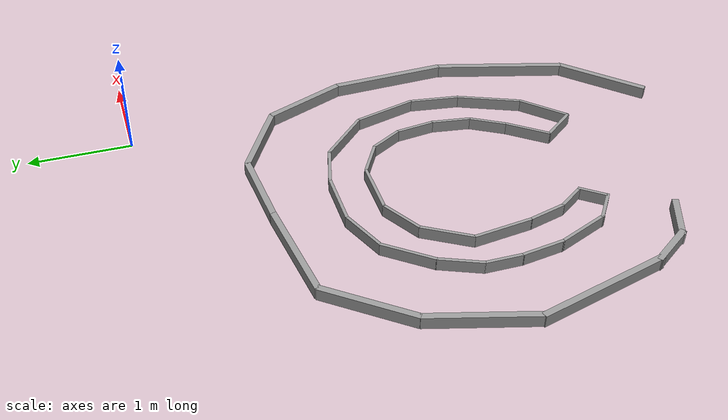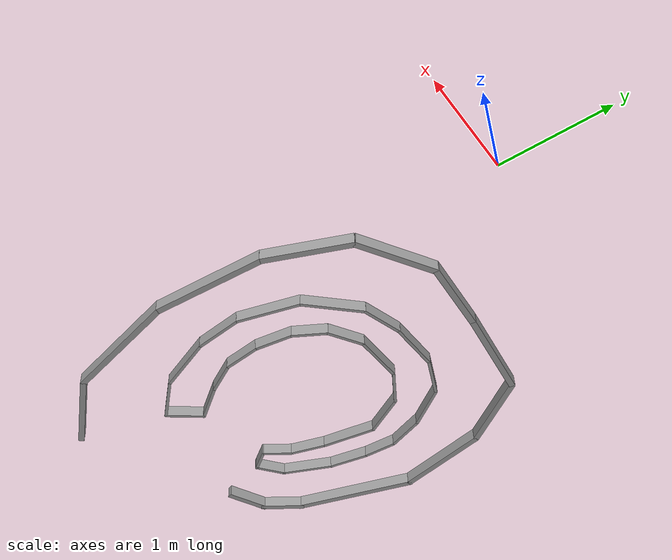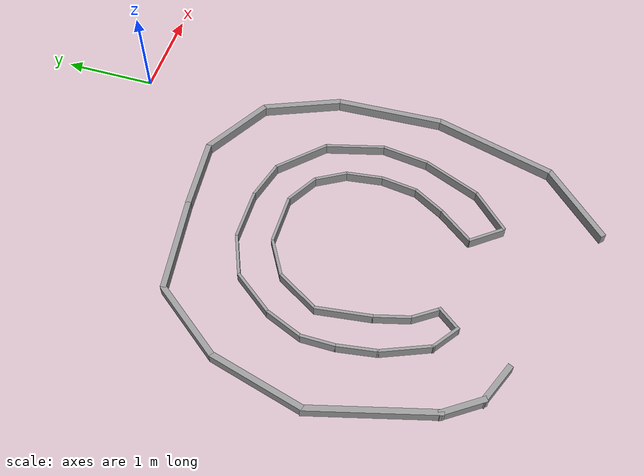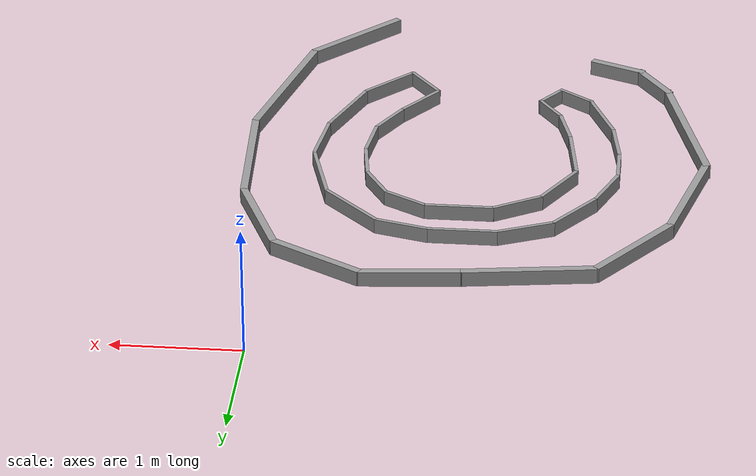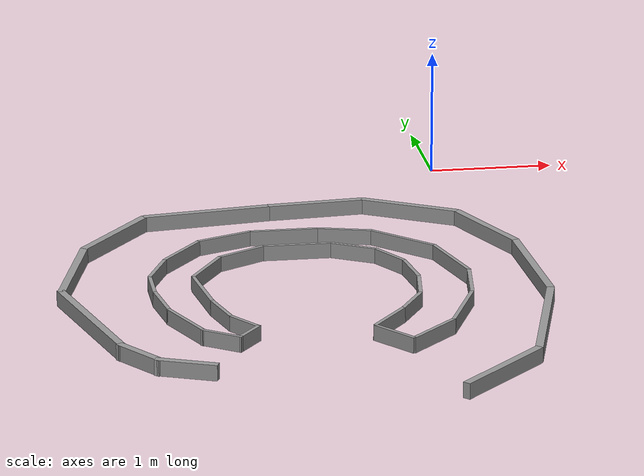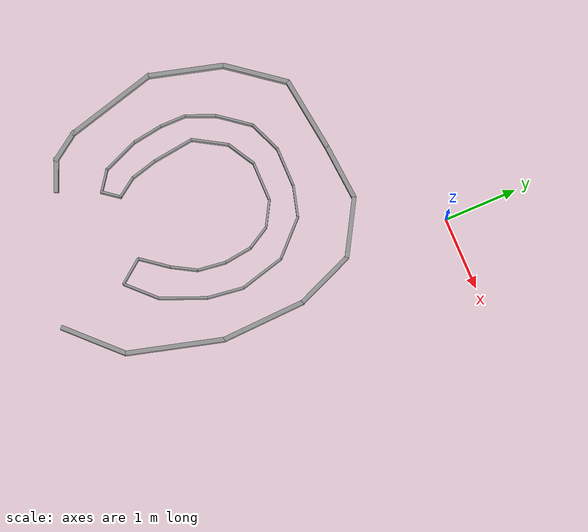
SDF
<?xml version='1.0'?>
<sdf version='1.4'>
  <model name='thymio_maze'>
    <link name='Wall_0'>
      <collision name='Wall_0_Collision'>
        <geometry>
          <box>
            <size>0.929348 0.06 0.12</size>
          </box>
        </geometry>
        <pose>0 0 0.06 0 -0 0</pose>
      </collision>
      <visual name='Wall_0_Visual'>
        <pose>0 0 0.06 0 -0 0</pose>
        <geometry>
          <box>
            <size>0.929348 0.06 0.12</size>
          </box>
        </geometry>
        <material>
          <script>
            <uri>file://media/materials/scripts/gazebo.material</uri>
            <name>Gazebo/Grey</name>
          </script>
        </material>
      </visual>
      <velocity_decay>
        <linear>0</linear>
        <angular>0</angular>
      </velocity_decay>
      <pose>-0.334962 -4.92496 0 0 -0 0.785398</pose>
    </link>
    <link name='Wall_1'>
      <collision name='Wall_1_Collision'>
        <geometry>
          <box>
            <size>1.32208 0.06 0.12</size>
          </box>
        </geometry>
        <pose>0 0 0.06 0 -0 0</pose>
      </collision>
      <visual name='Wall_1_Visual'>
        <pose>0 0 0.06 0 -0 0</pose>
        <geometry>
          <box>
            <size>1.32208 0.06 0.12</size>
          </box>
        </geometry>
        <material>
          <script>
            <uri>file://media/materials/scripts/gazebo.material</uri>
            <name>Gazebo/Grey</name>
          </script>
        </material>
      </visual>
      <velocity_decay>
        <linear>0</linear>
        <angular>0</angular>
      </velocity_decay>
      <pose>0.159873 -3.96624 0 0 -0 1.309</pose>
    </link>
    <link name='Wall_10'>
      <collision name='Wall_10_Collision'>
        <geometry>
          <box>
            <size>0.474957 0.06 0.12</size>
          </box>
        </geometry>
        <pose>0 0 0.06 0 -0 0</pose>
      </collision>
      <visual name='Wall_10_Visual'>
        <pose>0 0 0.06 0 -0 0</pose>
        <geometry>
          <box>
            <size>0.474957 0.06 0.12</size>
          </box>
        </geometry>
        <material>
          <script>
            <uri>file://media/materials/scripts/gazebo.material</uri>
            <name>Gazebo/Grey</name>
          </script>
        </material>
      </visual>
      <velocity_decay>
        <linear>0</linear>
        <angular>0</angular>
      </velocity_decay>
      <pose>-2.8775 -4.281 0 0 0 -0.968757</pose>
    </link>
    <link name='Wall_11'>
      <collision name='Wall_11_Collision'>
        <geometry>
          <box>
            <size>0.471539 0.06 0.12</size>
          </box>
        </geometry>
        <pose>0 0 0.06 0 -0 0</pose>
      </collision>
      <visual name='Wall_11_Visual'>
        <pose>0 0 0.06 0 -0 0</pose>
        <geometry>
          <box>
            <size>0.471539 0.06 0.12</size>
          </box>
        </geometry>
        <material>
          <script>
            <uri>file://media/materials/scripts/gazebo.material</uri>
            <name>Gazebo/Grey</name>
          </script>
        </material>
      </visual>
      <velocity_decay>
        <linear>0</linear>
        <angular>0</angular>
      </velocity_decay>
      <pose>-2.57 -4.531 0 0 0 -0.394043</pose>
    </link>
    <link name='Wall_13'>
      <collision name='Wall_13_Collision'>
        <geometry>
          <box>
            <size>0.516728 0.03 0.12</size>
          </box>
        </geometry>
        <pose>0 0 0.06 0 -0 0</pose>
      </collision>
      <visual name='Wall_13_Visual'>
        <pose>0 0 0.06 0 -0 0</pose>
        <geometry>
          <box>
            <size>0.516728 0.03 0.12</size>
          </box>
        </geometry>
        <material>
          <script>
            <uri>file://media/materials/scripts/gazebo.material</uri>
            <name>Gazebo/Grey</name>
          </script>
        </material>
      </visual>
      <velocity_decay>
        <linear>0</linear>
        <angular>0</angular>
      </velocity_decay>
      <pose>-0.692326 -4.09308 0 0 -0 0.785398</pose>
    </link>
    <link name='Wall_14'>
      <collision name='Wall_14_Collision'>
        <geometry>
          <box>
            <size>0.649087 0.03 0.12</size>
          </box>
        </geometry>
        <pose>0 0 0.06 0 -0 0</pose>
      </collision>
      <visual name='Wall_14_Visual'>
        <pose>0 0 0.06 0 -0 0</pose>
        <geometry>
          <box>
            <size>0.649087 0.03 0.12</size>
          </box>
        </geometry>
        <material>
          <script>
            <uri>file://media/materials/scripts/gazebo.material</uri>
            <name>Gazebo/Grey</name>
          </script>
        </material>
      </visual>
      <velocity_decay>
        <linear>0</linear>
        <angular>0</angular>
      </velocity_decay>
      <pose>-0.3908 -3.6185 0 0 -0 1.1781</pose>
    </link>
    <link name='Wall_15'>
      <collision name='Wall_15_Collision'>
        <geometry>
          <box>
            <size>0.503241 0.03 0.12</size>
          </box>
        </geometry>
        <pose>0 0 0.06 0 -0 0</pose>
      </collision>
      <visual name='Wall_15_Visual'>
        <pose>0 0 0.06 0 -0 0</pose>
        <geometry>
          <box>
            <size>0.503241 0.03 0.12</size>
          </box>
        </geometry>
        <material>
          <script>
            <uri>file://media/materials/scripts/gazebo.material</uri>
            <name>Gazebo/Grey</name>
          </script>
        </material>
      </visual>
      <velocity_decay>
        <linear>0</linear>
        <angular>0</angular>
      </velocity_decay>
      <pose>-0.236177 -3.07809 0 0 -0 1.4399</pose>
    </link>
    <link name='Wall_16'>
      <collision name='Wall_16_Collision'>
        <geometry>
          <box>
            <size>0.638103 0.03 0.12</size>
          </box>
        </geometry>
        <pose>0 0 0.06 0 -0 0</pose>
      </collision>
      <visual name='Wall_16_Visual'>
        <pose>0 0 0.06 0 -0 0</pose>
        <geometry>
          <box>
            <size>0.638103 0.03 0.12</size>
          </box>
        </geometry>
        <material>
          <script>
            <uri>file://media/materials/scripts/gazebo.material</uri>
            <name>Gazebo/Grey</name>
          </script>
        </material>
      </visual>
      <velocity_decay>
        <linear>0</linear>
        <angular>0</angular>
      </velocity_decay>
      <pose>-0.285208 -2.52977 0 0 -0 1.8326</pose>
    </link>
    <link name='Wall_17'>
      <collision name='Wall_17_Collision'>
        <geometry>
          <box>
            <size>0.612373 0.03 0.12</size>
          </box>
        </geometry>
        <pose>0 0 0.06 0 -0 0</pose>
      </collision>
      <visual name='Wall_17_Visual'>
        <pose>0 0 0.06 0 -0 0</pose>
        <geometry>
          <box>
            <size>0.612373 0.03 0.12</size>
          </box>
        </geometry>
        <material>
          <script>
            <uri>file://media/materials/scripts/gazebo.material</uri>
            <name>Gazebo/Grey</name>
          </script>
        </material>
      </visual>
      <velocity_decay>
        <linear>0</linear>
        <angular>0</angular>
      </velocity_decay>
      <pose>-0.579462 -2.01345 0 0 -0 2.35619</pose>
    </link>
    <link name='Wall_18'>
      <collision name='Wall_18_Collision'>
        <geometry>
          <box>
            <size>0.433062 0.03 0.12</size>
          </box>
        </geometry>
        <pose>0 0 0.06 0 -0 0</pose>
      </collision>
      <visual name='Wall_18_Visual'>
        <pose>0 0 0.06 0 -0 0</pose>
        <geometry>
          <box>
            <size>0.433062 0.03 0.12</size>
          </box>
        </geometry>
        <material>
          <script>
            <uri>file://media/materials/scripts/gazebo.material</uri>
            <name>Gazebo/Grey</name>
          </script>
        </material>
      </visual>
      <velocity_decay>
        <linear>0</linear>
        <angular>0</angular>
      </velocity_decay>
      <pose>-0.996756 -1.74573 0 0 -0 2.87979</pose>
    </link>
    <link name='Wall_19'>
      <collision name='Wall_19_Collision'>
        <geometry>
          <box>
            <size>0.548723 0.03 0.12</size>
          </box>
        </geometry>
        <pose>0 0 0.06 0 -0 0</pose>
      </collision>
      <visual name='Wall_19_Visual'>
        <pose>0 0 0.06 0 -0 0</pose>
        <geometry>
          <box>
            <size>0.548723 0.03 0.12</size>
          </box>
        </geometry>
        <material>
          <script>
            <uri>file://media/materials/scripts/gazebo.material</uri>
            <name>Gazebo/Grey</name>
          </script>
        </material>
      </visual>
      <velocity_decay>
        <linear>0</linear>
        <angular>0</angular>
      </velocity_decay>
      <pose>-1.47044 -1.69098 0 0 -0 3.14159</pose>
    </link>
    <link name='Wall_2'>
      <collision name='Wall_2_Collision'>
        <geometry>
          <box>
            <size>1.15363 0.06 0.12</size>
          </box>
        </geometry>
        <pose>0 0 0.06 0 -0 0</pose>
      </collision>
      <visual name='Wall_2_Visual'>
        <pose>0 0 0.06 0 -0 0</pose>
        <geometry>
          <box>
            <size>1.15363 0.06 0.12</size>
          </box>
        </geometry>
        <material>
          <script>
            <uri>file://media/materials/scripts/gazebo.material</uri>
            <name>Gazebo/Grey</name>
          </script>
        </material>
      </visual>
      <velocity_decay>
        <linear>0</linear>
        <angular>0</angular>
      </velocity_decay>
      <pose>0.304834 -2.76128 0 0 -0 1.61424</pose>
    </link>
    <link name='Wall_20'>
      <collision name='Wall_20_Collision'>
        <geometry>
          <box>
            <size>0.469074 0.03 0.12</size>
          </box>
        </geometry>
        <pose>0 0 0.06 0 -0 0</pose>
      </collision>
      <visual name='Wall_20_Visual'>
        <pose>0 0 0.06 0 -0 0</pose>
        <geometry>
          <box>
            <size>0.469074 0.03 0.12</size>
          </box>
        </geometry>
        <material>
          <script>
            <uri>file://media/materials/scripts/gazebo.material</uri>
            <name>Gazebo/Grey</name>
          </script>
        </material>
      </visual>
      <velocity_decay>
        <linear>0</linear>
        <angular>0</angular>
      </velocity_decay>
      <pose>-1.95187 -1.77882 0 0 0 -2.74889</pose>
    </link>
    <link name='Wall_21'>
      <collision name='Wall_21_Collision'>
        <geometry>
          <box>
            <size>0.517641 0.03 0.12</size>
          </box>
        </geometry>
        <pose>0 0 0.06 0 -0 0</pose>
      </collision>
      <visual name='Wall_21_Visual'>
        <pose>0 0 0.06 0 -0 0</pose>
        <geometry>
          <box>
            <size>0.517641 0.03 0.12</size>
          </box>
        </geometry>
        <material>
          <script>
            <uri>file://media/materials/scripts/gazebo.material</uri>
            <name>Gazebo/Grey</name>
          </script>
        </material>
      </visual>
      <velocity_decay>
        <linear>0</linear>
        <angular>0</angular>
      </velocity_decay>
      <pose>-2.31845 -2.06803 0 0 0 -2.2253</pose>
    </link>
    <link name='Wall_22'>
      <collision name='Wall_22_Collision'>
        <geometry>
          <box>
            <size>0.422992 0.03 0.12</size>
          </box>
        </geometry>
        <pose>0 0 0.06 0 -0 0</pose>
      </collision>
      <visual name='Wall_22_Visual'>
        <pose>0 0 0.06 0 -0 0</pose>
        <geometry>
          <box>
            <size>0.422992 0.03 0.12</size>
          </box>
        </geometry>
        <material>
          <script>
            <uri>file://media/materials/scripts/gazebo.material</uri>
            <name>Gazebo/Grey</name>
          </script>
        </material>
      </visual>
      <velocity_decay>
        <linear>0</linear>
        <angular>0</angular>
      </velocity_decay>
      <pose>-2.55199 -2.46018 0 0 0 -1.96349</pose>
    </link>
    <link name='Wall_23'>
      <collision name='Wall_23_Collision'>
        <geometry>
          <box>
            <size>0.358741 0.03 0.12</size>
          </box>
        </geometry>
        <pose>0 0 0.06 0 -0 0</pose>
      </collision>
      <visual name='Wall_23_Visual'>
        <pose>0 0 0.06 0 -0 0</pose>
        <geometry>
          <box>
            <size>0.358741 0.03 0.12</size>
          </box>
        </geometry>
        <material>
          <script>
            <uri>file://media/materials/scripts/gazebo.material</uri>
            <name>Gazebo/Grey</name>
          </script>
        </material>
      </visual>
      <velocity_decay>
        <linear>0</linear>
        <angular>0</angular>
      </velocity_decay>
      <pose>-2.63101 -2.82532 0 0 0 -1.5708</pose>
    </link>
    <link name='Wall_24'>
      <collision name='Wall_24_Collision'>
        <geometry>
          <box>
            <size>0.420746 0.03 0.12</size>
          </box>
        </geometry>
        <pose>0 0 0.06 0 -0 0</pose>
      </collision>
      <visual name='Wall_24_Visual'>
        <pose>0 0 0.06 0 -0 0</pose>
        <geometry>
          <box>
            <size>0.420746 0.03 0.12</size>
          </box>
        </geometry>
        <material>
          <script>
            <uri>file://media/materials/scripts/gazebo.material</uri>
            <name>Gazebo/Grey</name>
          </script>
        </material>
      </visual>
      <velocity_decay>
        <linear>0</linear>
        <angular>0</angular>
      </velocity_decay>
      <pose>-2.59991 -3.2027 0 0 0 -1.41876</pose>
    </link>
    <link name='Wall_25'>
      <collision name='Wall_25_Collision'>
        <geometry>
          <box>
            <size>0.549817 0.03 0.12</size>
          </box>
        </geometry>
        <pose>0 0 0.06 0 -0 0</pose>
      </collision>
      <visual name='Wall_25_Visual'>
        <pose>0 0 0.06 0 -0 0</pose>
        <geometry>
          <box>
            <size>0.549817 0.03 0.12</size>
          </box>
        </geometry>
        <material>
          <script>
            <uri>file://media/materials/scripts/gazebo.material</uri>
            <name>Gazebo/Grey</name>
          </script>
        </material>
      </visual>
      <velocity_decay>
        <linear>0</linear>
        <angular>0</angular>
      </velocity_decay>
      <pose>-2.4694 -3.64585 0 0 0 -1.17836</pose>
    </link>
    <link name='Wall_26'>
      <collision name='Wall_26_Collision'>
        <geometry>
          <box>
            <size>0.338089 0.03 0.12</size>
          </box>
        </geometry>
        <pose>0 0 0.06 0 -0 0</pose>
      </collision>
      <visual name='Wall_26_Visual'>
        <pose>0 0 0.06 0 -0 0</pose>
        <geometry>
          <box>
            <size>0.338089 0.03 0.12</size>
          </box>
        </geometry>
        <material>
          <script>
            <uri>file://media/materials/scripts/gazebo.material</uri>
            <name>Gazebo/Grey</name>
          </script>
        </material>
      </visual>
      <velocity_decay>
        <linear>0</linear>
        <angular>0</angular>
      </velocity_decay>
      <pose>-2.24549 -3.976 0 0 0 -0.625889</pose>
    </link>
    <link name='Wall_27'>
      <collision name='Wall_27_Collision'>
        <geometry>
          <box>
            <size>0.290628 0.03 0.12</size>
          </box>
        </geometry>
        <pose>0 0 0.06 0 -0 0</pose>
      </collision>
      <visual name='Wall_27_Visual'>
        <pose>0 0 0.06 0 -0 0</pose>
        <geometry>
          <box>
            <size>0.290628 0.03 0.12</size>
          </box>
        </geometry>
        <material>
          <script>
            <uri>file://media/materials/scripts/gazebo.material</uri>
            <name>Gazebo/Grey</name>
          </script>
        </material>
      </visual>
      <velocity_decay>
        <linear>0</linear>
        <angular>0</angular>
      </velocity_decay>
      <pose>-2.04165 -3.96261 0 0 -0 0.916298</pose>
    </link>
    <link name='Wall_28'>
      <collision name='Wall_28_Collision'>
        <geometry>
          <box>
            <size>0.309051 0.03 0.12</size>
          </box>
        </geometry>
        <pose>0 0 0.06 0 -0 0</pose>
      </collision>
      <visual name='Wall_28_Visual'>
        <pose>0 0 0.06 0 -0 0</pose>
        <geometry>
          <box>
            <size>0.309051 0.03 0.12</size>
          </box>
        </geometry>
        <material>
          <script>
            <uri>file://media/materials/scripts/gazebo.material</uri>
            <name>Gazebo/Grey</name>
          </script>
        </material>
      </visual>
      <velocity_decay>
        <linear>0</linear>
        <angular>0</angular>
      </velocity_decay>
      <pose>-2.04754 -3.73636 0 0 -0 2.17722</pose>
    </link>
    <link name='Wall_29'>
      <collision name='Wall_29_Collision'>
        <geometry>
          <box>
            <size>0.38166 0.03 0.12</size>
          </box>
        </geometry>
        <pose>0 0 0.06 0 -0 0</pose>
      </collision>
      <visual name='Wall_29_Visual'>
        <pose>0 0 0.06 0 -0 0</pose>
        <geometry>
          <box>
            <size>0.38166 0.03 0.12</size>
          </box>
        </geometry>
        <material>
          <script>
            <uri>file://media/materials/scripts/gazebo.material</uri>
            <name>Gazebo/Grey</name>
          </script>
        </material>
      </visual>
      <velocity_decay>
        <linear>0</linear>
        <angular>0</angular>
      </velocity_decay>
      <pose>-2.18086 -3.434 0 0 -0 1.8326</pose>
    </link>
    <link name='Wall_3'>
      <collision name='Wall_3_Collision'>
        <geometry>
          <box>
            <size>0.850952 0.06 0.12</size>
          </box>
        </geometry>
        <pose>0 0 0.06 0 -0 0</pose>
      </collision>
      <visual name='Wall_3_Visual'>
        <pose>0 0 0.06 0 -0 0</pose>
        <geometry>
          <box>
            <size>0.850952 0.06 0.12</size>
          </box>
        </geometry>
        <material>
          <script>
            <uri>file://media/materials/scripts/gazebo.material</uri>
            <name>Gazebo/Grey</name>
          </script>
        </material>
      </visual>
      <velocity_decay>
        <linear>0</linear>
        <angular>0</angular>
      </velocity_decay>
      <pose>0.119091 -1.80153 0 0 -0 1.96349</pose>
    </link>
    <link name='Wall_30'>
      <collision name='Wall_30_Collision'>
        <geometry>
          <box>
            <size>0.576041 0.03 0.12</size>
          </box>
        </geometry>
        <pose>0 0 0.06 0 -0 0</pose>
      </collision>
      <visual name='Wall_30_Visual'>
        <pose>0 0 0.06 0 -0 0</pose>
        <geometry>
          <box>
            <size>0.576041 0.03 0.12</size>
          </box>
        </geometry>
        <material>
          <script>
            <uri>file://media/materials/scripts/gazebo.material</uri>
            <name>Gazebo/Grey</name>
          </script>
        </material>
      </visual>
      <velocity_decay>
        <linear>0</linear>
        <angular>0</angular>
      </velocity_decay>
      <pose>-2.2659 -2.9739 0 0 -0 1.7017</pose>
    </link>
    <link name='Wall_31'>
      <collision name='Wall_31_Collision'>
        <geometry>
          <box>
            <size>0.505487 0.03 0.12</size>
          </box>
        </geometry>
        <pose>0 0 0.06 0 -0 0</pose>
      </collision>
      <visual name='Wall_31_Visual'>
        <pose>0 0 0.06 0 -0 0</pose>
        <geometry>
          <box>
            <size>0.505487 0.03 0.12</size>
          </box>
        </geometry>
        <material>
          <script>
            <uri>file://media/materials/scripts/gazebo.material</uri>
            <name>Gazebo/Grey</name>
          </script>
        </material>
      </visual>
      <velocity_decay>
        <linear>0</linear>
        <angular>0</angular>
      </velocity_decay>
      <pose>-2.17595 -2.48053 0 0 -0 1.03306</pose>
    </link>
    <link name='Wall_32'>
      <collision name='Wall_32_Collision'>
        <geometry>
          <box>
            <size>0.430244 0.03 0.12</size>
          </box>
        </geometry>
        <pose>0 0 0.06 0 -0 0</pose>
      </collision>
      <visual name='Wall_32_Visual'>
        <pose>0 0 0.06 0 -0 0</pose>
        <geometry>
          <box>
            <size>0.430244 0.03 0.12</size>
          </box>
        </geometry>
        <material>
          <script>
            <uri>file://media/materials/scripts/gazebo.material</uri>
            <name>Gazebo/Grey</name>
          </script>
        </material>
      </visual>
      <velocity_decay>
        <linear>0</linear>
        <angular>0</angular>
      </velocity_decay>
      <pose>-1.86708 -2.16269 0 0 -0 0.523599</pose>
    </link>
    <link name='Wall_33'>
      <collision name='Wall_33_Collision'>
        <geometry>
          <box>
            <size>0.543363 0.03 0.12</size>
          </box>
        </geometry>
        <pose>0 0 0.06 0 -0 0</pose>
      </collision>
      <visual name='Wall_33_Visual'>
        <pose>0 0 0.06 0 -0 0</pose>
        <geometry>
          <box>
            <size>0.543363 0.03 0.12</size>
          </box>
        </geometry>
        <material>
          <script>
            <uri>file://media/materials/scripts/gazebo.material</uri>
            <name>Gazebo/Grey</name>
          </script>
        </material>
      </visual>
      <velocity_decay>
        <linear>0</linear>
        <angular>0</angular>
      </velocity_decay>
      <pose>-1.41843 -2.05762 0 0 -0 0</pose>
    </link>
    <link name='Wall_34'>
      <collision name='Wall_34_Collision'>
        <geometry>
          <box>
            <size>0.382081 0.03 0.12</size>
          </box>
        </geometry>
        <pose>0 0 0.06 0 -0 0</pose>
      </collision>
      <visual name='Wall_34_Visual'>
        <pose>0 0 0.06 0 -0 0</pose>
        <geometry>
          <box>
            <size>0.382081 0.03 0.12</size>
          </box>
        </geometry>
        <material>
          <script>
            <uri>file://media/materials/scripts/gazebo.material</uri>
            <name>Gazebo/Grey</name>
          </script>
        </material>
      </visual>
      <velocity_decay>
        <linear>0</linear>
        <angular>0</angular>
      </velocity_decay>
      <pose>-0.990633 -2.15064 0 0 0 -0.523599</pose>
    </link>
    <link name='Wall_35'>
      <collision name='Wall_35_Collision'>
        <geometry>
          <box>
            <size>0.353313 0.03 0.12</size>
          </box>
        </geometry>
        <pose>0 0 0.06 0 -0 0</pose>
      </collision>
      <visual name='Wall_35_Visual'>
        <pose>0 0 0.06 0 -0 0</pose>
        <geometry>
          <box>
            <size>0.353313 0.03 0.12</size>
          </box>
        </geometry>
        <material>
          <script>
            <uri>file://media/materials/scripts/gazebo.material</uri>
            <name>Gazebo/Grey</name>
          </script>
        </material>
      </visual>
      <velocity_decay>
        <linear>0</linear>
        <angular>0</angular>
      </velocity_decay>
      <pose>-0.743689 -2.39232 0 0 0 -1.0472</pose>
    </link>
    <link name='Wall_36'>
      <collision name='Wall_36_Collision'>
        <geometry>
          <box>
            <size>0.392803 0.03 0.12</size>
          </box>
        </geometry>
        <pose>0 0 0.06 0 -0 0</pose>
      </collision>
      <visual name='Wall_36_Visual'>
        <pose>0 0 0.06 0 -0 0</pose>
        <geometry>
          <box>
            <size>0.392803 0.03 0.12</size>
          </box>
        </geometry>
        <material>
          <script>
            <uri>file://media/materials/scripts/gazebo.material</uri>
            <name>Gazebo/Grey</name>
          </script>
        </material>
      </visual>
      <velocity_decay>
        <linear>0</linear>
        <angular>0</angular>
      </velocity_decay>
      <pose>-0.632878 -2.73075 0 0 0 -1.4399</pose>
    </link>
    <link name='Wall_37'>
      <collision name='Wall_37_Collision'>
        <geometry>
          <box>
            <size>0.391377 0.03 0.12</size>
          </box>
        </geometry>
        <pose>0 0 0.06 0 -0 0</pose>
      </collision>
      <visual name='Wall_37_Visual'>
        <pose>0 0 0.06 0 -0 0</pose>
        <geometry>
          <box>
            <size>0.391377 0.03 0.12</size>
          </box>
        </geometry>
        <material>
          <script>
            <uri>file://media/materials/scripts/gazebo.material</uri>
            <name>Gazebo/Grey</name>
          </script>
        </material>
      </visual>
      <velocity_decay>
        <linear>0</linear>
        <angular>0</angular>
      </velocity_decay>
      <pose>-0.632785 -3.10957 0 0 0 -1.7017</pose>
    </link>
    <link name='Wall_38'>
      <collision name='Wall_38_Collision'>
        <geometry>
          <box>
            <size>0.376115 0.03 0.12</size>
          </box>
        </geometry>
        <pose>0 0 0.06 0 -0 0</pose>
      </collision>
      <visual name='Wall_38_Visual'>
        <pose>0 0 0.06 0 -0 0</pose>
        <geometry>
          <box>
            <size>0.376115 0.03 0.12</size>
          </box>
        </geometry>
        <material>
          <script>
            <uri>file://media/materials/scripts/gazebo.material</uri>
            <name>Gazebo/Grey</name>
          </script>
        </material>
      </visual>
      <velocity_decay>
        <linear>0</linear>
        <angular>0</angular>
      </velocity_decay>
      <pose>-0.749203 -3.45716 0 0 0 -2.0944</pose>
    </link>
    <link name='Wall_39'>
      <collision name='Wall_39_Collision'>
        <geometry>
          <box>
            <size>0.449036 0.03 0.12</size>
          </box>
        </geometry>
        <pose>0 0 0.06 0 -0 0</pose>
      </collision>
      <visual name='Wall_39_Visual'>
        <pose>0 0 0.06 0 -0 0</pose>
        <geometry>
          <box>
            <size>0.449036 0.03 0.12</size>
          </box>
        </geometry>
        <material>
          <script>
            <uri>file://media/materials/scripts/gazebo.material</uri>
            <name>Gazebo/Grey</name>
          </script>
        </material>
      </visual>
      <velocity_decay>
        <linear>0</linear>
        <angular>0</angular>
      </velocity_decay>
      <pose>-0.974366 -3.78985 0 0 0 -2.2253</pose>
    </link>
    <link name='Wall_4'>
      <collision name='Wall_4_Collision'>
        <geometry>
          <box>
            <size>0.814735 0.06 0.12</size>
          </box>
        </geometry>
        <pose>0 0 0.06 0 -0 0</pose>
      </collision>
      <visual name='Wall_4_Visual'>
        <pose>0 0 0.06 0 -0 0</pose>
        <geometry>
          <box>
            <size>0.814735 0.06 0.12</size>
          </box>
        </geometry>
        <material>
          <script>
            <uri>file://media/materials/scripts/gazebo.material</uri>
            <name>Gazebo/Grey</name>
          </script>
        </material>
      </visual>
      <velocity_decay>
        <linear>0</linear>
        <angular>0</angular>
      </velocity_decay>
      <pose>-0.390279 -1.21188 0 0 -0 2.61799</pose>
    </link>
    <link name='Wall_40'>
      <collision name='Wall_40_Collision'>
        <geometry>
          <box>
            <size>0.398524 0.03 0.12</size>
          </box>
        </geometry>
        <pose>0 0 0.06 0 -0 0</pose>
      </collision>
      <visual name='Wall_40_Visual'>
        <pose>0 0 0.06 0 -0 0</pose>
        <geometry>
          <box>
            <size>0.398524 0.03 0.12</size>
          </box>
        </geometry>
        <material>
          <script>
            <uri>file://media/materials/scripts/gazebo.material</uri>
            <name>Gazebo/Grey</name>
          </script>
        </material>
      </visual>
      <velocity_decay>
        <linear>0</linear>
        <angular>0</angular>
      </velocity_decay>
      <pose>-0.989741 -4.11812 0 0 0 -0.916298</pose>
    </link>
    <link name='Wall_5'>
      <collision name='Wall_5_Collision'>
        <geometry>
          <box>
            <size>0.779264 0.06 0.12</size>
          </box>
        </geometry>
        <pose>0 0 0.06 0 -0 0</pose>
      </collision>
      <visual name='Wall_5_Visual'>
        <pose>0 0 0.06 0 -0 0</pose>
        <geometry>
          <box>
            <size>0.779264 0.06 0.12</size>
          </box>
        </geometry>
        <material>
          <script>
            <uri>file://media/materials/scripts/gazebo.material</uri>
            <name>Gazebo/Grey</name>
          </script>
        </material>
      </visual>
      <velocity_decay>
        <linear>0</linear>
        <angular>0</angular>
      </velocity_decay>
      <pose>-1.12207 -1.04224 0 0 0 -3.05947</pose>
    </link>
    <link name='Wall_6'>
      <collision name='Wall_6_Collision'>
        <geometry>
          <box>
            <size>1.03014 0.06 0.12</size>
          </box>
        </geometry>
        <pose>0 0 0.06 0 -0 0</pose>
      </collision>
      <visual name='Wall_6_Visual'>
        <pose>0 0 0.06 0 -0 0</pose>
        <geometry>
          <box>
            <size>1.03014 0.06 0.12</size>
          </box>
        </geometry>
        <material>
          <script>
            <uri>file://media/materials/scripts/gazebo.material</uri>
            <name>Gazebo/Grey</name>
          </script>
        </material>
      </visual>
      <velocity_decay>
        <linear>0</linear>
        <angular>0</angular>
      </velocity_decay>
      <pose>-2.01158 -1.14043 0 0 0 -3.01069</pose>
    </link>
    <link name='Wall_7'>
      <collision name='Wall_7_Collision'>
        <geometry>
          <box>
            <size>0.90175 0.06 0.12</size>
          </box>
        </geometry>
        <pose>0 0 0.06 0 -0 0</pose>
      </collision>
      <visual name='Wall_7_Visual'>
        <pose>0 0 0.06 0 -0 0</pose>
        <geometry>
          <box>
            <size>0.90175 0.06 0.12</size>
          </box>
        </geometry>
        <material>
          <script>
            <uri>file://media/materials/scripts/gazebo.material</uri>
            <name>Gazebo/Grey</name>
          </script>
        </material>
      </visual>
      <velocity_decay>
        <linear>0</linear>
        <angular>0</angular>
      </velocity_decay>
      <pose>-2.78918 -1.56081 0 0 0 -2.2253</pose>
    </link>
    <link name='Wall_8'>
      <collision name='Wall_8_Collision'>
        <geometry>
          <box>
            <size>1.02039 0.06 0.12</size>
          </box>
        </geometry>
        <pose>0 0 0.06 0 -0 0</pose>
      </collision>
      <visual name='Wall_8_Visual'>
        <pose>0 0 0.06 0 -0 0</pose>
        <geometry>
          <box>
            <size>1.02039 0.06 0.12</size>
          </box>
        </geometry>
        <material>
          <script>
            <uri>file://media/materials/scripts/gazebo.material</uri>
            <name>Gazebo/Grey</name>
          </script>
        </material>
      </visual>
      <velocity_decay>
        <linear>0</linear>
        <angular>0</angular>
      </velocity_decay>
      <pose>-3.19137 -2.40253 0 0 0 -1.8326</pose>
    </link>
    <link name='Wall_9'>
      <collision name='Wall_9_Collision'>
        <geometry>
          <box>
            <size>1.31261 0.06 0.12</size>
          </box>
        </geometry>
        <pose>0 0 0.06 0 -0 0</pose>
      </collision>
      <visual name='Wall_9_Visual'>
        <pose>0 0 0.06 0 -0 0</pose>
        <geometry>
          <box>
            <size>1.31261 0.06 0.12</size>
          </box>
        </geometry>
        <material>
          <script>
            <uri>file://media/materials/scripts/gazebo.material</uri>
            <name>Gazebo/Grey</name>
          </script>
        </material>
      </visual>
      <velocity_decay>
        <linear>0</linear>
        <angular>0</angular>
      </velocity_decay>
      <pose>-3.15856 -3.50025 0 0 0 -1.30872</pose>
    </link>
    <static>1</static>
  </model>
</sdf>
